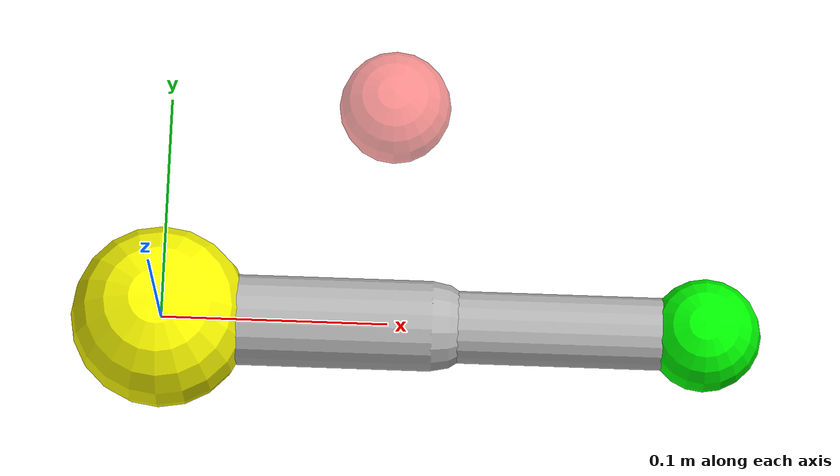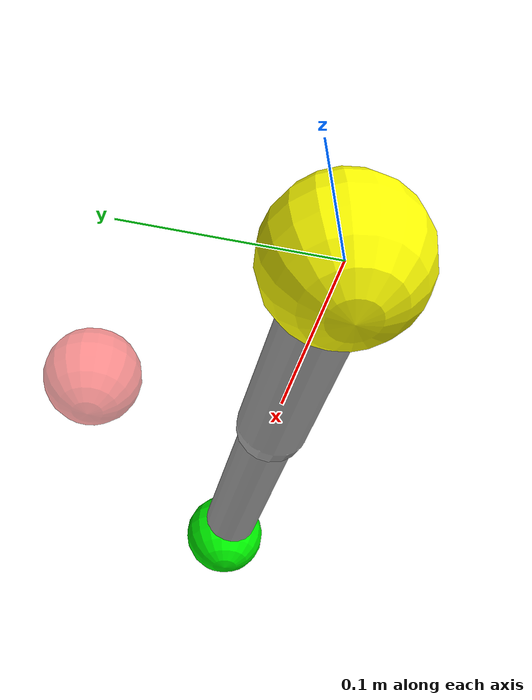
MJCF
<!-- MuJoCo MJCF: 2-DOF Planar Reacher
     Two-link planar arm operating in the horizontal (XY) plane.
     Task: move the fingertip to a target site.
-->
<mujoco model="reacher">

  <option timestep="0.01" gravity="0 0 0" integrator="RK4"/>

  <asset>
    <texture type="skybox" builtin="gradient" rgb1="0.4 0.6 0.8" rgb2="0 0 0"
             width="512" height="512"/>
    <material name="arm"    rgba="0.7 0.7 0.7 1"/>
    <material name="target" rgba="1.0 0.3 0.3 0.6"/>
  </asset>

  <worldbody>
    <light pos="0 0 2" dir="0 0 -1"/>

    <!-- Shoulder: fixed to world -->
    <site name="shoulder" pos="0 0 0" size="0.04" rgba="1 1 0 1"/>

    <body name="upper_arm" pos="0 0 0">
      <joint name="shoulder_joint" type="hinge" axis="0 0 1" pos="0 0 0"
             limited="false" damping="0.1" armature="0.01"/>
      <geom name="upper_arm_geom" type="capsule" fromto="0 0 0 0.12 0 0"
            size="0.02" material="arm" mass="0.1"/>

      <body name="forearm" pos="0.12 0 0">
        <joint name="elbow_joint" type="hinge" axis="0 0 1" pos="0 0 0"
               limited="false" damping="0.1" armature="0.01"/>
        <geom name="forearm_geom" type="capsule" fromto="0 0 0 0.12 0 0"
              size="0.016" material="arm" mass="0.1"/>
        <site name="fingertip" pos="0.12 0 0" size="0.025" rgba="0 1 0 1"/>
      </body>
    </body>

    <!-- Randomly repositioned target in code; default placed 0.1 m from origin -->
    <body name="target" pos="0.1 0.1 0" mocap="true">
      <geom name="target_geom" type="sphere" size="0.025" material="target"/>
      <site name="target_site" pos="0 0 0" size="0.025" rgba="1 0.3 0.3 0.8"/>
    </body>
  </worldbody>

  <actuator>
    <motor name="shoulder_motor" joint="shoulder_joint" gear="1"
           ctrllimited="true" ctrlrange="-1 1"/>
    <motor name="elbow_motor"    joint="elbow_joint"    gear="1"
           ctrllimited="true" ctrlrange="-1 1"/>
  </actuator>

  <sensor>
    <jointpos  name="q_shoulder"  joint="shoulder_joint"/>
    <jointpos  name="q_elbow"     joint="elbow_joint"/>
    <jointvel  name="dq_shoulder" joint="shoulder_joint"/>
    <jointvel  name="dq_elbow"    joint="elbow_joint"/>
    <framepos  name="fingertip_pos" objtype="site" objname="fingertip"/>
    <framepos  name="target_pos"    objtype="site" objname="target_site"/>
  </sensor>

</mujoco>
